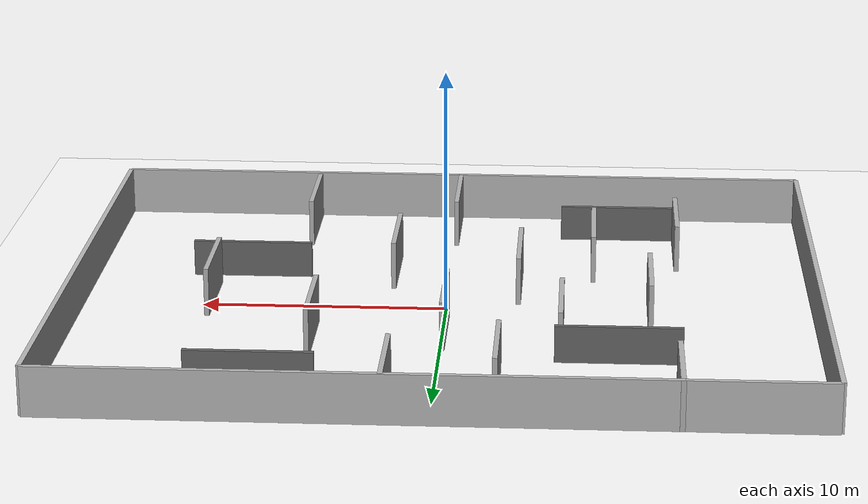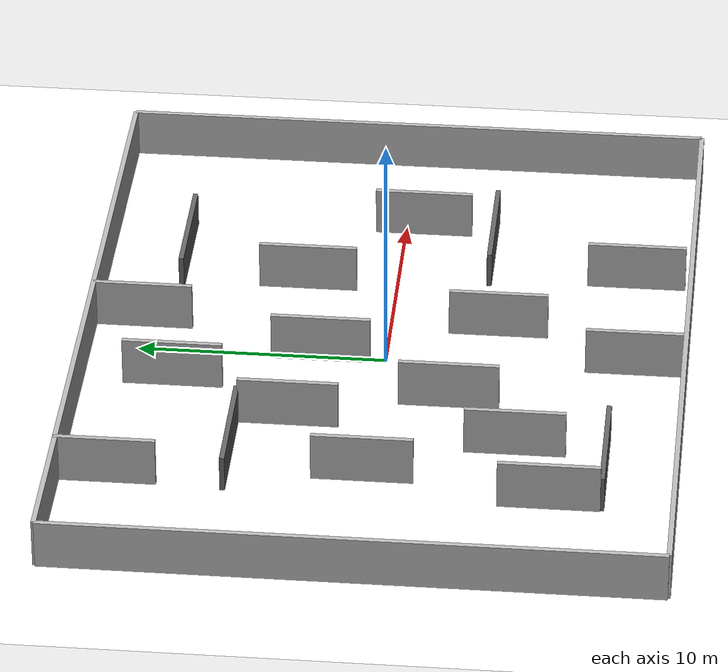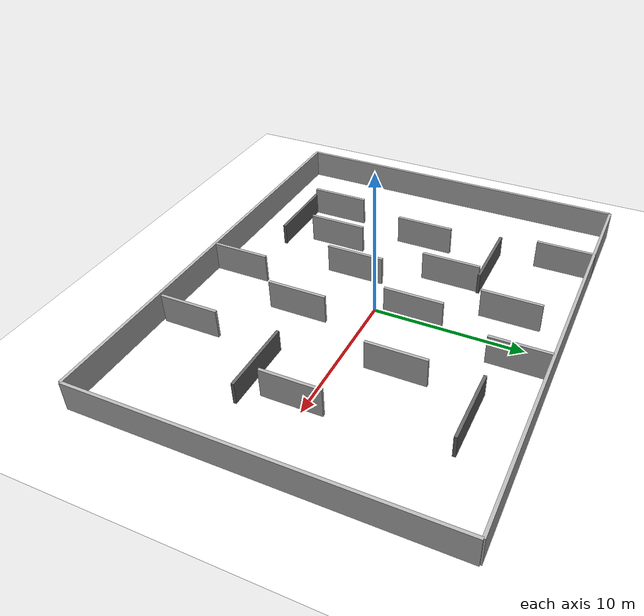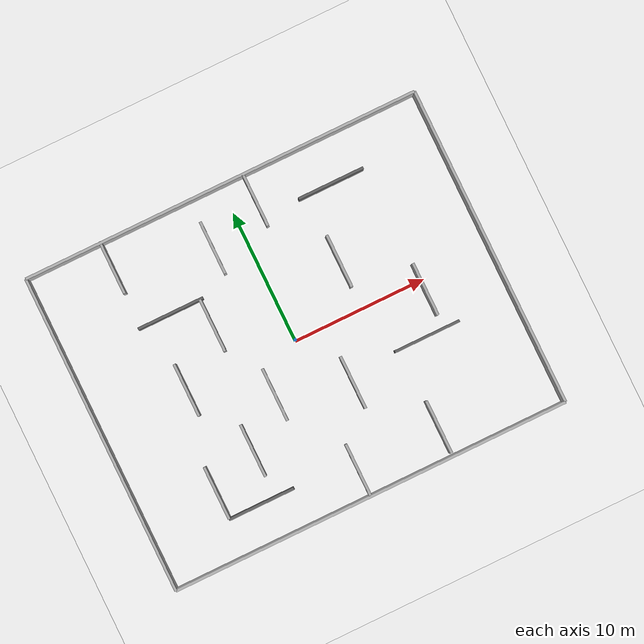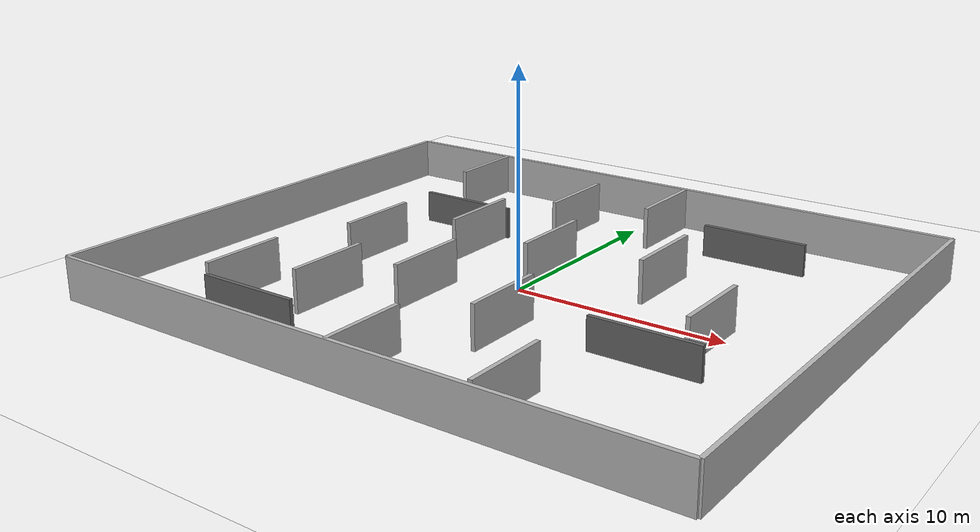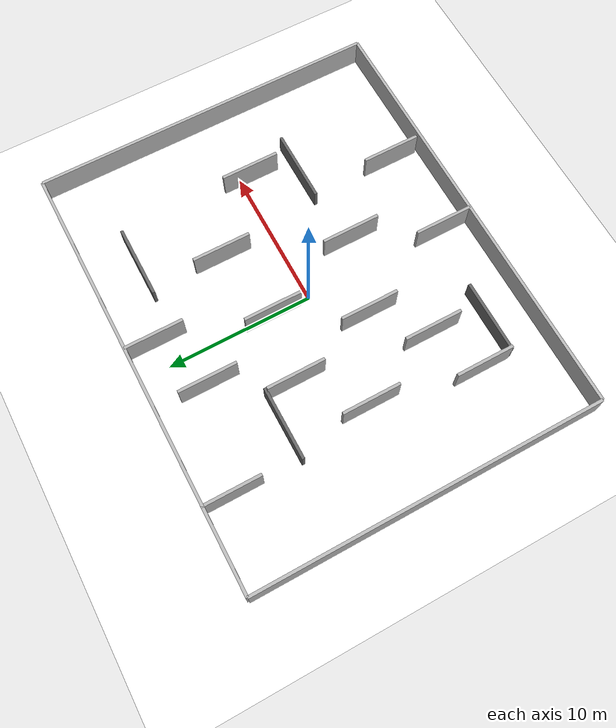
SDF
<sdf version='1.9'>
  <world name='ttbot_colored_warehouse_world'>
    <physics name='1ms' type='ignored'>
      <max_step_size>0.001</max_step_size>
      <real_time_factor>1</real_time_factor>
      <real_time_update_rate>1000</real_time_update_rate>
    </physics>
    <plugin name='ignition::gazebo::systems::Sensors' filename='ignition-gazebo-sensors-system'>
      <render_engine>ogre2</render_engine>
    </plugin>
    <plugin name='ignition::gazebo::systems::NavSat' filename='ignition-gazebo-navsat-system'/>
    <plugin name='ignition::gazebo::systems::SceneBroadcaster' filename='ignition-gazebo-scene-broadcaster-system'/>
    <plugin name='ignition::gazebo::systems::UserCommands' filename='ignition-gazebo-user-commands-system'/>
    <plugin name='ignition::gazebo::systems::Physics' filename='ignition-gazebo-physics-system'/>
    <spherical_coordinates>
      <surface_model>EARTH_WGS84</surface_model>
      <world_frame_orientation>ENU</world_frame_orientation>
      <latitude_deg>10.772741999999999</latitude_deg>
      <longitude_deg>106.659712</longitude_deg>
      <elevation>0</elevation>
      <heading_deg>0</heading_deg>
    </spherical_coordinates>
    <gravity>0 0 -9.8</gravity>
    <magnetic_field>6e-06 2.3e-05 -4.2e-05</magnetic_field>
    <atmosphere type='adiabatic'/>
    <scene>
      <ambient>0.4 0.4 0.4 1</ambient>
      <background>0.7 0.7 0.7 1</background>
      <shadows>true</shadows>
    </scene>
    <model name='white_floor'>
      <static>true</static>
      <pose>0 0 0 0 -0 0</pose>
      <link name='floor_link'>
        <collision name='collision'>
          <geometry>
            <plane>
              <normal>0 0 1</normal>
              <size>40 40</size>
            </plane>
          </geometry>
          <surface>
            <friction>
              <ode/>
            </friction>
            <bounce/>
            <contact/>
          </surface>
        </collision>
        <visual name='visual'>
          <geometry>
            <plane>
              <normal>0 0 1</normal>
              <size>40 40</size>
            </plane>
          </geometry>
          <material>
            <ambient>1 1 1 1</ambient>
            <diffuse>1 1 1 1</diffuse>
            <specular>0.1 0.1 0.1 1</specular>
          </material>
        </visual>
        <pose>0 0 0 0 -0 0</pose>
        <inertial>
          <pose>0 0 0 0 -0 0</pose>
          <mass>1</mass>
          <inertia>
            <ixx>1</ixx>
            <ixy>0</ixy>
            <ixz>0</ixz>
            <iyy>1</iyy>
            <iyz>0</iyz>
            <izz>1</izz>
          </inertia>
        </inertial>
        <enable_wind>false</enable_wind>
      </link>
      <self_collide>false</self_collide>
    </model>
    <model name='wall_north'>
      <static>true</static>
      <pose>0 12 1 0 -0 0</pose>
      <link name='link'>
        <collision name='collision'>
          <geometry>
            <box>
              <size>30 0.2 2</size>
            </box>
          </geometry>
          <surface>
            <friction>
              <ode/>
            </friction>
            <bounce/>
            <contact/>
          </surface>
        </collision>
        <visual name='visual'>
          <geometry>
            <box>
              <size>30 0.2 2</size>
            </box>
          </geometry>
        </visual>
        <pose>0 0 0 0 -0 0</pose>
        <inertial>
          <pose>0 0 0 0 -0 0</pose>
          <mass>1</mass>
          <inertia>
            <ixx>1</ixx>
            <ixy>0</ixy>
            <ixz>0</ixz>
            <iyy>1</iyy>
            <iyz>0</iyz>
            <izz>1</izz>
          </inertia>
        </inertial>
        <enable_wind>false</enable_wind>
      </link>
      <self_collide>false</self_collide>
    </model>
    <model name='wall_south'>
      <static>true</static>
      <pose>0 -12 1 0 -0 0</pose>
      <link name='link'>
        <collision name='collision'>
          <geometry>
            <box>
              <size>30 0.2 2</size>
            </box>
          </geometry>
          <surface>
            <friction>
              <ode/>
            </friction>
            <bounce/>
            <contact/>
          </surface>
        </collision>
        <visual name='visual'>
          <geometry>
            <box>
              <size>30 0.2 2</size>
            </box>
          </geometry>
        </visual>
        <pose>0 0 0 0 -0 0</pose>
        <inertial>
          <pose>0 0 0 0 -0 0</pose>
          <mass>1</mass>
          <inertia>
            <ixx>1</ixx>
            <ixy>0</ixy>
            <ixz>0</ixz>
            <iyy>1</iyy>
            <iyz>0</iyz>
            <izz>1</izz>
          </inertia>
        </inertial>
        <enable_wind>false</enable_wind>
      </link>
      <self_collide>false</self_collide>
    </model>
    <model name='wall_east'>
      <static>true</static>
      <pose>15 0 1 0 -0 0</pose>
      <link name='link'>
        <collision name='collision'>
          <geometry>
            <box>
              <size>0.2 24 2</size>
            </box>
          </geometry>
          <surface>
            <friction>
              <ode/>
            </friction>
            <bounce/>
            <contact/>
          </surface>
        </collision>
        <visual name='visual'>
          <geometry>
            <box>
              <size>0.2 24 2</size>
            </box>
          </geometry>
        </visual>
        <pose>0 0 0 0 -0 0</pose>
        <inertial>
          <pose>0 0 0 0 -0 0</pose>
          <mass>1</mass>
          <inertia>
            <ixx>1</ixx>
            <ixy>0</ixy>
            <ixz>0</ixz>
            <iyy>1</iyy>
            <iyz>0</iyz>
            <izz>1</izz>
          </inertia>
        </inertial>
        <enable_wind>false</enable_wind>
      </link>
      <self_collide>false</self_collide>
    </model>
    <model name='wall_west'>
      <static>true</static>
      <pose>-15 0 1 0 -0 0</pose>
      <link name='link'>
        <collision name='collision'>
          <geometry>
            <box>
              <size>0.2 24 2</size>
            </box>
          </geometry>
          <surface>
            <friction>
              <ode/>
            </friction>
            <bounce/>
            <contact/>
          </surface>
        </collision>
        <visual name='visual'>
          <geometry>
            <box>
              <size>0.2 24 2</size>
            </box>
          </geometry>
        </visual>
        <pose>0 0 0 0 -0 0</pose>
        <inertial>
          <pose>0 0 0 0 -0 0</pose>
          <mass>1</mass>
          <inertia>
            <ixx>1</ixx>
            <ixy>0</ixy>
            <ixz>0</ixz>
            <iyy>1</iyy>
            <iyz>0</iyz>
            <izz>1</izz>
          </inertia>
        </inertial>
        <enable_wind>false</enable_wind>
      </link>
      <self_collide>false</self_collide>
    </model>
    <model name='mid_vertical_bottom'>
      <static>true</static>
      <pose>0 -10 1 0 -0 0</pose>
      <link name='link'>
        <collision name='collision'>
          <geometry>
            <box>
              <size>0.2 4 2</size>
            </box>
          </geometry>
          <surface>
            <friction>
              <ode/>
            </friction>
            <bounce/>
            <contact/>
          </surface>
        </collision>
        <visual name='visual'>
          <geometry>
            <box>
              <size>0.2 4 2</size>
            </box>
          </geometry>
          <material>
            <ambient>0.7 0.7 0.7 1</ambient>
            <diffuse>0.7 0.7 0.7 1</diffuse>
          </material>
        </visual>
        <pose>0 0 0 0 -0 0</pose>
        <inertial>
          <pose>0 0 0 0 -0 0</pose>
          <mass>1</mass>
          <inertia>
            <ixx>1</ixx>
            <ixy>0</ixy>
            <ixz>0</ixz>
            <iyy>1</iyy>
            <iyz>0</iyz>
            <izz>1</izz>
          </inertia>
        </inertial>
        <enable_wind>false</enable_wind>
      </link>
      <self_collide>false</self_collide>
    </model>
    <model name='blocker_tl'>
      <static>true</static>
      <pose>-7 5.5 0.75 0 -0 0</pose>
      <link name='link'>
        <collision name='collision'>
          <geometry>
            <box>
              <size>5 0.2 1.5</size>
            </box>
          </geometry>
          <surface>
            <friction>
              <ode/>
            </friction>
            <bounce/>
            <contact/>
          </surface>
        </collision>
        <visual name='visual'>
          <geometry>
            <box>
              <size>5 0.2 1.5</size>
            </box>
          </geometry>
          <material>
            <ambient>0.4 0.4 0.4 1</ambient>
            <diffuse>0.4 0.4 0.4 1</diffuse>
          </material>
        </visual>
        <pose>0 0 0 0 -0 0</pose>
        <inertial>
          <pose>0 0 0 0 -0 0</pose>
          <mass>1</mass>
          <inertia>
            <ixx>1</ixx>
            <ixy>0</ixy>
            <ixz>0</ixz>
            <iyy>1</iyy>
            <iyz>0</iyz>
            <izz>1</izz>
          </inertia>
        </inertial>
        <enable_wind>false</enable_wind>
      </link>
      <self_collide>false</self_collide>
    </model>
    <model name='blocker_tr'>
      <static>true</static>
      <pose>7 8.8 0.75 0 -0 0</pose>
      <link name='link'>
        <collision name='collision'>
          <geometry>
            <box>
              <size>5 0.2 1.5</size>
            </box>
          </geometry>
          <surface>
            <friction>
              <ode/>
            </friction>
            <bounce/>
            <contact/>
          </surface>
        </collision>
        <visual name='visual'>
          <geometry>
            <box>
              <size>5 0.2 1.5</size>
            </box>
          </geometry>
          <material>
            <ambient>0.4 0.4 0.4 1</ambient>
            <diffuse>0.4 0.4 0.4 1</diffuse>
          </material>
        </visual>
        <pose>0 0 0 0 -0 0</pose>
        <inertial>
          <pose>0 0 0 0 -0 0</pose>
          <mass>1</mass>
          <inertia>
            <ixx>1</ixx>
            <ixy>0</ixy>
            <ixz>0</ixz>
            <iyy>1</iyy>
            <iyz>0</iyz>
            <izz>1</izz>
          </inertia>
        </inertial>
        <enable_wind>false</enable_wind>
      </link>
      <self_collide>false</self_collide>
    </model>
    <model name='mid_vertical_bottom_1'>
      <static>true</static>
      <pose>-8.30003 0.185165 1 0 -0 0</pose>
      <link name='link'>
        <collision name='collision'>
          <geometry>
            <box>
              <size>0.2 4 2</size>
            </box>
          </geometry>
          <surface>
            <friction>
              <ode/>
            </friction>
            <bounce/>
            <contact/>
          </surface>
        </collision>
        <visual name='visual'>
          <geometry>
            <box>
              <size>0.2 4 2</size>
            </box>
          </geometry>
          <material>
            <ambient>0.7 0.7 0.7 1</ambient>
            <diffuse>0.7 0.7 0.7 1</diffuse>
          </material>
        </visual>
        <pose>0 0 0 0 -0 0</pose>
        <inertial>
          <pose>0 0 0 0 -0 0</pose>
          <mass>1</mass>
          <inertia>
            <ixx>1</ixx>
            <ixy>0</ixy>
            <ixz>0</ixz>
            <iyy>1</iyy>
            <iyz>0</iyz>
            <izz>1</izz>
          </inertia>
        </inertial>
        <enable_wind>false</enable_wind>
      </link>
      <self_collide>false</self_collide>
    </model>
    <model name='mid_vertical_bottom_6'>
      <static>true</static>
      <pose>-9.51871 -7.14529 1 0 -0 0</pose>
      <link name='link'>
        <collision name='collision'>
          <geometry>
            <box>
              <size>0.2 4 2</size>
            </box>
          </geometry>
          <surface>
            <friction>
              <ode/>
            </friction>
            <bounce/>
            <contact/>
          </surface>
        </collision>
        <visual name='visual'>
          <geometry>
            <box>
              <size>0.2 4 2</size>
            </box>
          </geometry>
          <material>
            <ambient>0.7 0.7 0.7 1</ambient>
            <diffuse>0.7 0.7 0.7 1</diffuse>
          </material>
        </visual>
        <pose>0 0 0 0 -0 0</pose>
        <inertial>
          <pose>0 0 0 0 -0 0</pose>
          <mass>1</mass>
          <inertia>
            <ixx>1</ixx>
            <ixy>0</ixy>
            <ixz>0</ixz>
            <iyy>1</iyy>
            <iyz>0</iyz>
            <izz>1</izz>
          </inertia>
        </inertial>
        <enable_wind>false</enable_wind>
      </link>
      <self_collide>false</self_collide>
    </model>
    <model name='blocker_tl_1'>
      <static>true</static>
      <pose>-7.06458 -9.19112 0.75 0 -0 0</pose>
      <link name='link'>
        <collision name='collision'>
          <geometry>
            <box>
              <size>5 0.2 1.5</size>
            </box>
          </geometry>
          <surface>
            <friction>
              <ode/>
            </friction>
            <bounce/>
            <contact/>
          </surface>
        </collision>
        <visual name='visual'>
          <geometry>
            <box>
              <size>5 0.2 1.5</size>
            </box>
          </geometry>
          <material>
            <ambient>0.4 0.4 0.4 1</ambient>
            <diffuse>0.4 0.4 0.4 1</diffuse>
          </material>
        </visual>
        <pose>0 0 0 0 -0 0</pose>
        <inertial>
          <pose>0 0 0 0 -0 0</pose>
          <mass>1</mass>
          <inertia>
            <ixx>1</ixx>
            <ixy>0</ixy>
            <ixz>0</ixz>
            <iyy>1</iyy>
            <iyz>0</iyz>
            <izz>1</izz>
          </inertia>
        </inertial>
        <enable_wind>false</enable_wind>
      </link>
      <self_collide>false</self_collide>
    </model>
    <model name='mid_vertical_bottom_1_1'>
      <static>true</static>
      <pose>-4.73079 3.44774 1 0 -0 0</pose>
      <link name='link'>
        <collision name='collision'>
          <geometry>
            <box>
              <size>0.2 4 2</size>
            </box>
          </geometry>
          <surface>
            <friction>
              <ode/>
            </friction>
            <bounce/>
            <contact/>
          </surface>
        </collision>
        <visual name='visual'>
          <geometry>
            <box>
              <size>0.2 4 2</size>
            </box>
          </geometry>
          <material>
            <ambient>0.7 0.7 0.7 1</ambient>
            <diffuse>0.7 0.7 0.7 1</diffuse>
          </material>
        </visual>
        <pose>0 0 0 0 -0 0</pose>
        <inertial>
          <pose>0 0 0 0 -0 0</pose>
          <mass>1</mass>
          <inertia>
            <ixx>1</ixx>
            <ixy>0</ixy>
            <ixz>0</ixz>
            <iyy>1</iyy>
            <iyz>0</iyz>
            <izz>1</izz>
          </inertia>
        </inertial>
        <enable_wind>false</enable_wind>
      </link>
      <self_collide>false</self_collide>
    </model>
    <model name='mid_vertical_bottom_1_2'>
      <static>true</static>
      <pose>-5.98393 -5.59339 1 0 -0 0</pose>
      <link name='link'>
        <collision name='collision'>
          <geometry>
            <box>
              <size>0.2 4 2</size>
            </box>
          </geometry>
          <surface>
            <friction>
              <ode/>
            </friction>
            <bounce/>
            <contact/>
          </surface>
        </collision>
        <visual name='visual'>
          <geometry>
            <box>
              <size>0.2 4 2</size>
            </box>
          </geometry>
          <material>
            <ambient>0.7 0.7 0.7 1</ambient>
            <diffuse>0.7 0.7 0.7 1</diffuse>
          </material>
        </visual>
        <pose>0 0 0 0 -0 0</pose>
        <inertial>
          <pose>0 0 0 0 -0 0</pose>
          <mass>1</mass>
          <inertia>
            <ixx>1</ixx>
            <ixy>0</ixy>
            <ixz>0</ixz>
            <iyy>1</iyy>
            <iyz>0</iyz>
            <izz>1</izz>
          </inertia>
        </inertial>
        <enable_wind>false</enable_wind>
      </link>
      <self_collide>false</self_collide>
    </model>
    <model name='mid_vertical_bottom_2'>
      <static>true</static>
      <pose>-2.92324 -2.76119 1 0 -0 0</pose>
      <link name='link'>
        <collision name='collision'>
          <geometry>
            <box>
              <size>0.2 4 2</size>
            </box>
          </geometry>
          <surface>
            <friction>
              <ode/>
            </friction>
            <bounce/>
            <contact/>
          </surface>
        </collision>
        <visual name='visual'>
          <geometry>
            <box>
              <size>0.2 4 2</size>
            </box>
          </geometry>
          <material>
            <ambient>0.7 0.7 0.7 1</ambient>
            <diffuse>0.7 0.7 0.7 1</diffuse>
          </material>
        </visual>
        <pose>0 0 0 0 -0 0</pose>
        <inertial>
          <pose>0 0 0 0 -0 0</pose>
          <mass>1</mass>
          <inertia>
            <ixx>1</ixx>
            <ixy>0</ixy>
            <ixz>0</ixz>
            <iyy>1</iyy>
            <iyz>0</iyz>
            <izz>1</izz>
          </inertia>
        </inertial>
        <enable_wind>false</enable_wind>
      </link>
      <self_collide>false</self_collide>
    </model>
    <model name='mid_vertical_bottom_4_1'>
      <static>true</static>
      <pose>-0.080393 2.6126 1 0 -0 0</pose>
      <link name='link'>
        <collision name='collision'>
          <geometry>
            <box>
              <size>0.2 4 2</size>
            </box>
          </geometry>
          <surface>
            <friction>
              <ode/>
            </friction>
            <bounce/>
            <contact/>
          </surface>
        </collision>
        <visual name='visual'>
          <geometry>
            <box>
              <size>0.2 4 2</size>
            </box>
          </geometry>
          <material>
            <ambient>0.7 0.7 0.7 1</ambient>
            <diffuse>0.7 0.7 0.7 1</diffuse>
          </material>
        </visual>
        <pose>0 0 0 0 -0 0</pose>
        <inertial>
          <pose>0 0 0 0 -0 0</pose>
          <mass>1</mass>
          <inertia>
            <ixx>1</ixx>
            <ixy>0</ixy>
            <ixz>0</ixz>
            <iyy>1</iyy>
            <iyz>0</iyz>
            <izz>1</izz>
          </inertia>
        </inertial>
        <enable_wind>false</enable_wind>
      </link>
      <self_collide>false</self_collide>
    </model>
    <model name='mid_vertical_bottom_3'>
      <static>true</static>
      <pose>2.32909 -4.35447 1 0 -0 0</pose>
      <link name='link'>
        <collision name='collision'>
          <geometry>
            <box>
              <size>0.2 4 2</size>
            </box>
          </geometry>
          <surface>
            <friction>
              <ode/>
            </friction>
            <bounce/>
            <contact/>
          </surface>
        </collision>
        <visual name='visual'>
          <geometry>
            <box>
              <size>0.2 4 2</size>
            </box>
          </geometry>
          <material>
            <ambient>0.7 0.7 0.7 1</ambient>
            <diffuse>0.7 0.7 0.7 1</diffuse>
          </material>
        </visual>
        <pose>0 0 0 0 -0 0</pose>
        <inertial>
          <pose>0 0 0 0 -0 0</pose>
          <mass>1</mass>
          <inertia>
            <ixx>1</ixx>
            <ixy>0</ixy>
            <ixz>0</ixz>
            <iyy>1</iyy>
            <iyz>0</iyz>
            <izz>1</izz>
          </inertia>
        </inertial>
        <enable_wind>false</enable_wind>
      </link>
      <self_collide>false</self_collide>
    </model>
    <model name='mid_vertical_bottom_7'>
      <static>true</static>
      <pose>6.33934 -9.73167 1 0 -0 0</pose>
      <link name='link'>
        <collision name='collision'>
          <geometry>
            <box>
              <size>0.2 4 2</size>
            </box>
          </geometry>
          <surface>
            <friction>
              <ode/>
            </friction>
            <bounce/>
            <contact/>
          </surface>
        </collision>
        <visual name='visual'>
          <geometry>
            <box>
              <size>0.2 4 2</size>
            </box>
          </geometry>
          <material>
            <ambient>0.7 0.7 0.7 1</ambient>
            <diffuse>0.7 0.7 0.7 1</diffuse>
          </material>
        </visual>
        <pose>0 0 0 0 -0 0</pose>
        <inertial>
          <pose>0 0 0 0 -0 0</pose>
          <mass>1</mass>
          <inertia>
            <ixx>1</ixx>
            <ixy>0</ixy>
            <ixz>0</ixz>
            <iyy>1</iyy>
            <iyz>0</iyz>
            <izz>1</izz>
          </inertia>
        </inertial>
        <enable_wind>false</enable_wind>
      </link>
      <self_collide>false</self_collide>
    </model>
    <model name='blocker_tl_1_1'>
      <static>true</static>
      <pose>8.38394 -3.71342 0.75 0 -0 0</pose>
      <link name='link'>
        <collision name='collision'>
          <geometry>
            <box>
              <size>5 0.2 1.5</size>
            </box>
          </geometry>
          <surface>
            <friction>
              <ode/>
            </friction>
            <bounce/>
            <contact/>
          </surface>
        </collision>
        <visual name='visual'>
          <geometry>
            <box>
              <size>5 0.2 1.5</size>
            </box>
          </geometry>
          <material>
            <ambient>0.4 0.4 0.4 1</ambient>
            <diffuse>0.4 0.4 0.4 1</diffuse>
          </material>
        </visual>
        <pose>0 0 0 0 -0 0</pose>
        <inertial>
          <pose>0 0 0 0 -0 0</pose>
          <mass>1</mass>
          <inertia>
            <ixx>1</ixx>
            <ixy>0</ixy>
            <ixz>0</ixz>
            <iyy>1</iyy>
            <iyz>0</iyz>
            <izz>1</izz>
          </inertia>
        </inertial>
        <enable_wind>false</enable_wind>
      </link>
      <self_collide>false</self_collide>
    </model>
    <model name='mid_vertical_bottom_4'>
      <static>true</static>
      <pose>-2.37487 8.30836 1 0 -0 0</pose>
      <link name='link'>
        <collision name='collision'>
          <geometry>
            <box>
              <size>0.2 4 2</size>
            </box>
          </geometry>
          <surface>
            <friction>
              <ode/>
            </friction>
            <bounce/>
            <contact/>
          </surface>
        </collision>
        <visual name='visual'>
          <geometry>
            <box>
              <size>0.2 4 2</size>
            </box>
          </geometry>
          <material>
            <ambient>0.7 0.7 0.7 1</ambient>
            <diffuse>0.7 0.7 0.7 1</diffuse>
          </material>
        </visual>
        <pose>0 0 0 0 -0 0</pose>
        <inertial>
          <pose>0 0 0 0 -0 0</pose>
          <mass>1</mass>
          <inertia>
            <ixx>1</ixx>
            <ixy>0</ixy>
            <ixz>0</ixz>
            <iyy>1</iyy>
            <iyz>0</iyz>
            <izz>1</izz>
          </inertia>
        </inertial>
        <enable_wind>false</enable_wind>
      </link>
      <self_collide>false</self_collide>
    </model>
    <model name='mid_vertical_bottom_4_1_1'>
      <static>true</static>
      <pose>5.14245 3.64763 1 0 -0 0</pose>
      <link name='link'>
        <collision name='collision'>
          <geometry>
            <box>
              <size>0.2 4 2</size>
            </box>
          </geometry>
          <surface>
            <friction>
              <ode/>
            </friction>
            <bounce/>
            <contact/>
          </surface>
        </collision>
        <visual name='visual'>
          <geometry>
            <box>
              <size>0.2 4 2</size>
            </box>
          </geometry>
          <material>
            <ambient>0.7 0.7 0.7 1</ambient>
            <diffuse>0.7 0.7 0.7 1</diffuse>
          </material>
        </visual>
        <pose>0 0 0 0 -0 0</pose>
        <inertial>
          <pose>0 0 0 0 -0 0</pose>
          <mass>1</mass>
          <inertia>
            <ixx>1</ixx>
            <ixy>0</ixy>
            <ixz>0</ixz>
            <iyy>1</iyy>
            <iyz>0</iyz>
            <izz>1</izz>
          </inertia>
        </inertial>
        <enable_wind>false</enable_wind>
      </link>
      <self_collide>false</self_collide>
    </model>
    <model name='mid_vertical_bottom_4_1_2'>
      <static>true</static>
      <pose>9.67414 -0.725819 1 0 -0 0</pose>
      <link name='link'>
        <collision name='collision'>
          <geometry>
            <box>
              <size>0.2 4 2</size>
            </box>
          </geometry>
          <surface>
            <friction>
              <ode/>
            </friction>
            <bounce/>
            <contact/>
          </surface>
        </collision>
        <visual name='visual'>
          <geometry>
            <box>
              <size>0.2 4 2</size>
            </box>
          </geometry>
          <material>
            <ambient>0.7 0.7 0.7 1</ambient>
            <diffuse>0.7 0.7 0.7 1</diffuse>
          </material>
        </visual>
        <pose>0 0 0 0 -0 0</pose>
        <inertial>
          <pose>0 0 0 0 -0 0</pose>
          <mass>1</mass>
          <inertia>
            <ixx>1</ixx>
            <ixy>0</ixy>
            <ixz>0</ixz>
            <iyy>1</iyy>
            <iyz>0</iyz>
            <izz>1</izz>
          </inertia>
        </inertial>
        <enable_wind>false</enable_wind>
      </link>
      <self_collide>false</self_collide>
    </model>
    <model name='mid_vertical_bottom_4_1_2_1'>
      <static>true</static>
      <pose>1.74548 10.0078 1 0 -0 0</pose>
      <link name='link'>
        <collision name='collision'>
          <geometry>
            <box>
              <size>0.2 4 2</size>
            </box>
          </geometry>
          <surface>
            <friction>
              <ode/>
            </friction>
            <bounce/>
            <contact/>
          </surface>
        </collision>
        <visual name='visual'>
          <geometry>
            <box>
              <size>0.2 4 2</size>
            </box>
          </geometry>
          <material>
            <ambient>0.7 0.7 0.7 1</ambient>
            <diffuse>0.7 0.7 0.7 1</diffuse>
          </material>
        </visual>
        <pose>0 0 0 0 -0 0</pose>
        <inertial>
          <pose>0 0 0 0 -0 0</pose>
          <mass>1</mass>
          <inertia>
            <ixx>1</ixx>
            <ixy>0</ixy>
            <ixz>0</ixz>
            <iyy>1</iyy>
            <iyz>0</iyz>
            <izz>1</izz>
          </inertia>
        </inertial>
        <enable_wind>false</enable_wind>
      </link>
      <self_collide>false</self_collide>
    </model>
    <model name='mid_vertical_bottom_4_1_2_2'>
      <static>true</static>
      <pose>-9.26131 10.1083 1 0 -0 0</pose>
      <link name='link'>
        <collision name='collision'>
          <geometry>
            <box>
              <size>0.2 4 2</size>
            </box>
          </geometry>
          <surface>
            <friction>
              <ode/>
            </friction>
            <bounce/>
            <contact/>
          </surface>
        </collision>
        <visual name='visual'>
          <geometry>
            <box>
              <size>0.2 4 2</size>
            </box>
          </geometry>
          <material>
            <ambient>0.7 0.7 0.7 1</ambient>
            <diffuse>0.7 0.7 0.7 1</diffuse>
          </material>
        </visual>
        <pose>0 0 0 0 -0 0</pose>
        <inertial>
          <pose>0 0 0 0 -0 0</pose>
          <mass>1</mass>
          <inertia>
            <ixx>1</ixx>
            <ixy>0</ixy>
            <ixz>0</ixz>
            <iyy>1</iyy>
            <iyz>0</iyz>
            <izz>1</izz>
          </inertia>
        </inertial>
        <enable_wind>false</enable_wind>
      </link>
      <self_collide>false</self_collide>
    </model>
    <light name='sun' type='directional'>
      <pose>0 0 10 0 -0 0</pose>
      <cast_shadows>true</cast_shadows>
      <intensity>1</intensity>
      <direction>-0.5 0.1 -0.9</direction>
      <diffuse>0.8 0.8 0.8 1</diffuse>
      <specular>0.2 0.2 0.2 1</specular>
      <attenuation>
        <range>1000</range>
        <linear>0.01</linear>
        <constant>0.90000000000000002</constant>
        <quadratic>0.001</quadratic>
      </attenuation>
      <spot>
        <inner_angle>0</inner_angle>
        <outer_angle>0</outer_angle>
        <falloff>0</falloff>
      </spot>
    </light>
  </world>
</sdf>
